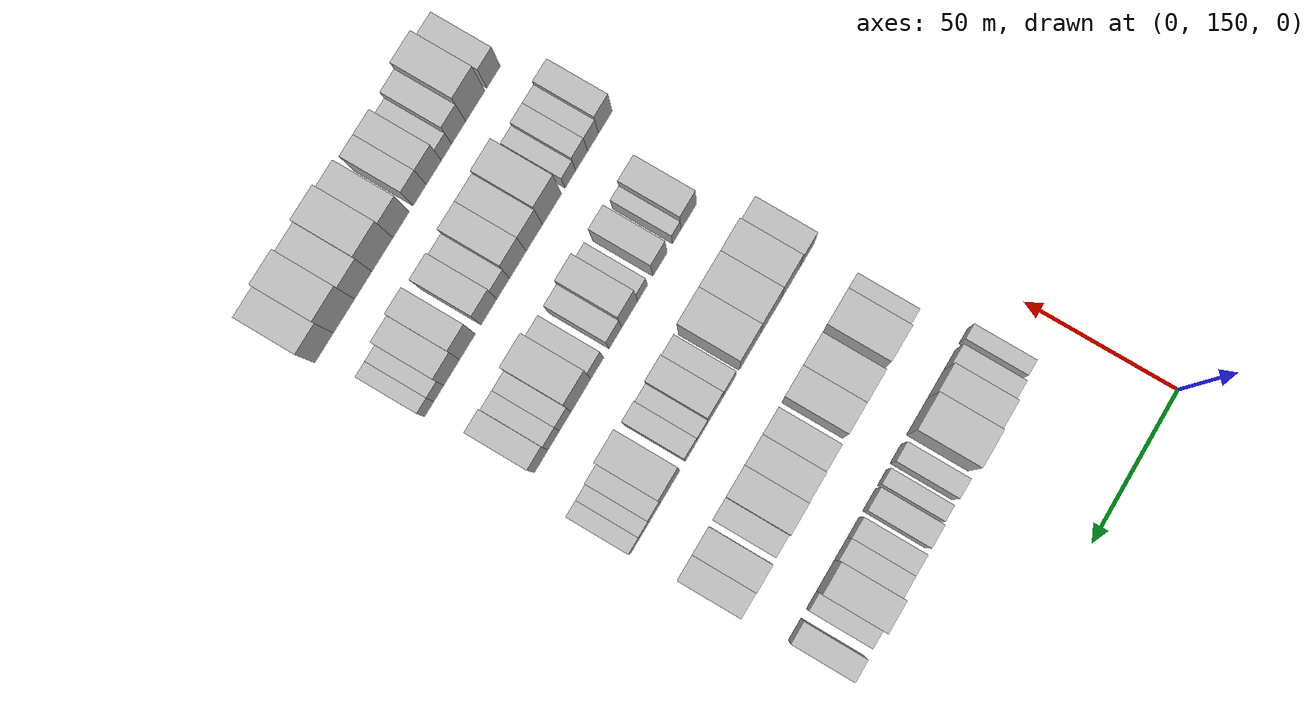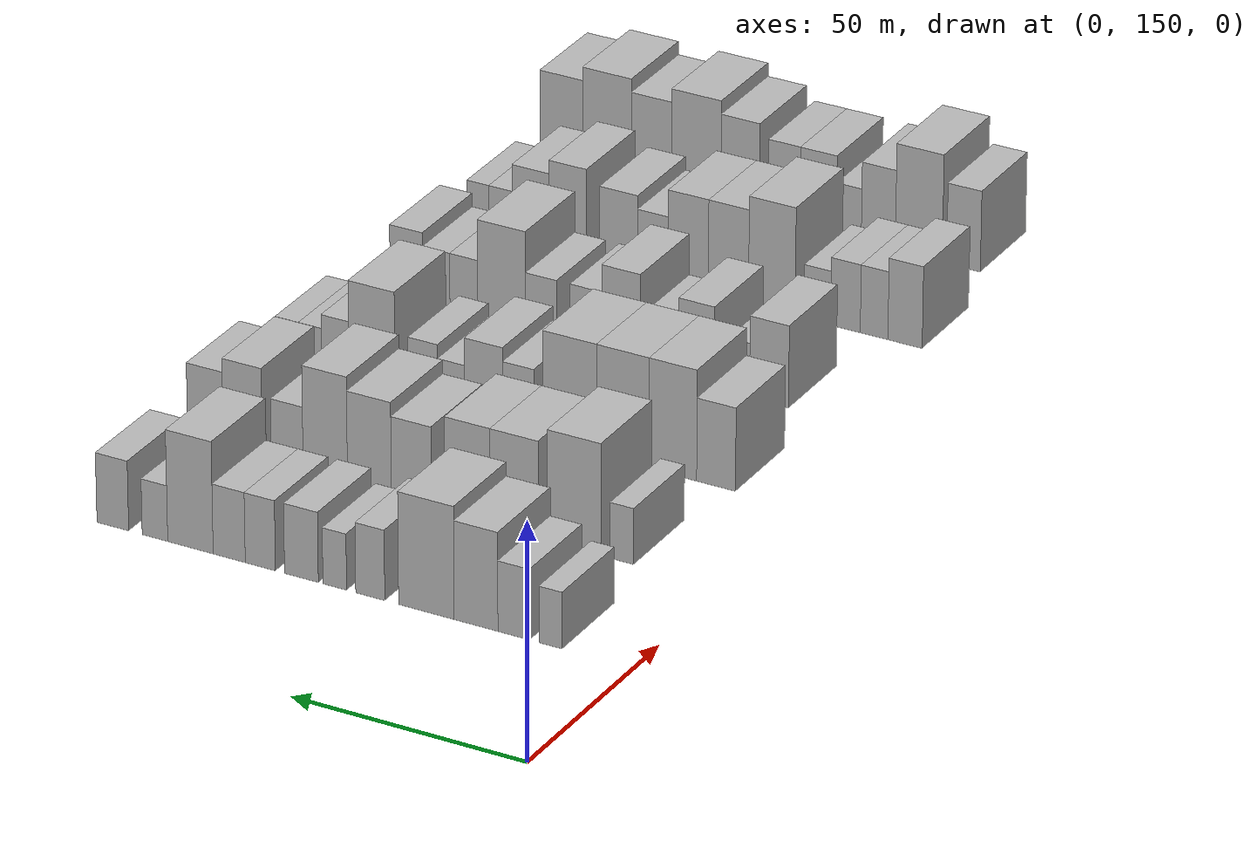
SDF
<sdf version="1.6">
 <world name="default">
  <model name="building_81">
   <static>1</static>
   <pose>50.0000 167.6186 0 0.000000 0.000000 0.000000</pose>
   <link name="link">
    <pose>0 0 6.00 0 0 0</pose>
    <collision name="collision"><geometry><box><size>20.0000 4.9465 12.0000</size></box></geometry></collision>
    <visual name="visual">
     <cast_shadows>0</cast_shadows>
     <geometry><box><size>20.0000 4.9465 12.0000</size></box></geometry>
     <material>
      <script>
       <uri>model://HANNAS_wall/materials/scripts</uri>
       <uri>model://HANNAS_wall/materials/textures</uri>
       <name>vrc/HANNAS_wall</name>
      </script>
     </material>
    </visual>
   </link>
  </model>
  <model name="building_82">
   <static>1</static>
   <pose>50.0000 175.4789 0 0.000000 0.000000 0.000000</pose>
   <link name="link">
    <pose>0 0 7.50 0 0 0</pose>
    <collision name="collision"><geometry><box><size>20.0000 6.7741 15.0000</size></box></geometry></collision>
    <visual name="visual">
     <cast_shadows>0</cast_shadows>
     <geometry><box><size>20.0000 6.7741 15.0000</size></box></geometry>
     <material>
      <script>
       <uri>model://HANNAS_wall/materials/scripts</uri>
       <uri>model://HANNAS_wall/materials/textures</uri>
       <name>vrc/HANNAS_wall</name>
      </script>
     </material>
    </visual>
   </link>
  </model>
  <model name="building_83">
   <static>1</static>
   <pose>50.0000 183.5598 0 0.000000 0.000000 0.000000</pose>
   <link name="link">
    <pose>0 0 10.50 0 0 0</pose>
    <collision name="collision"><geometry><box><size>20.0000 9.3877 21.0000</size></box></geometry></collision>
    <visual name="visual">
     <cast_shadows>0</cast_shadows>
     <geometry><box><size>20.0000 9.3877 21.0000</size></box></geometry>
     <material>
      <script>
       <uri>model://HANNAS_wall/materials/scripts</uri>
       <uri>model://HANNAS_wall/materials/textures</uri>
       <name>vrc/HANNAS_wall</name>
      </script>
     </material>
    </visual>
   </link>
  </model>
  <model name="building_84">
   <static>1</static>
   <pose>50.0000 194.2479 0 0.000000 0.000000 0.000000</pose>
   <link name="link">
    <pose>0 0 12.00 0 0 0</pose>
    <collision name="collision"><geometry><box><size>20.0000 11.9885 24.0000</size></box></geometry></collision>
    <visual name="visual">
     <cast_shadows>0</cast_shadows>
     <geometry><box><size>20.0000 11.9885 24.0000</size></box></geometry>
     <material>
      <script>
       <uri>model://HANNAS_wall/materials/scripts</uri>
       <uri>model://HANNAS_wall/materials/textures</uri>
       <name>vrc/HANNAS_wall</name>
      </script>
     </material>
    </visual>
   </link>
  </model>
  <model name="building_85">
   <static>1</static>
   <pose>50.0000 206.3884 0 0.000000 0.000000 0.000000</pose>
   <link name="link">
    <pose>0 0 7.50 0 0 0</pose>
    <collision name="collision"><geometry><box><size>20.0000 6.2926 15.0000</size></box></geometry></collision>
    <visual name="visual">
     <cast_shadows>0</cast_shadows>
     <geometry><box><size>20.0000 6.2926 15.0000</size></box></geometry>
     <material>
      <script>
       <uri>model://HANNAS_wall/materials/scripts</uri>
       <uri>model://HANNAS_wall/materials/textures</uri>
       <name>vrc/HANNAS_wall</name>
      </script>
     </material>
    </visual>
   </link>
  </model>
  <model name="building_86">
   <static>1</static>
   <pose>50.0000 214.1060 0 0.000000 0.000000 0.000000</pose>
   <link name="link">
    <pose>0 0 6.00 0 0 0</pose>
    <collision name="collision"><geometry><box><size>20.0000 5.1425 12.0000</size></box></geometry></collision>
    <visual name="visual">
     <cast_shadows>0</cast_shadows>
     <geometry><box><size>20.0000 5.1425 12.0000</size></box></geometry>
     <material>
      <script>
       <uri>model://HANNAS_wall/materials/scripts</uri>
       <uri>model://HANNAS_wall/materials/textures</uri>
       <name>vrc/HANNAS_wall</name>
      </script>
     </material>
    </visual>
   </link>
  </model>
  <model name="building_87">
   <static>1</static>
   <pose>50.0000 221.3671 0 0.000000 0.000000 0.000000</pose>
   <link name="link">
    <pose>0 0 7.50 0 0 0</pose>
    <collision name="collision"><geometry><box><size>20.0000 7.3797 15.0000</size></box></geometry></collision>
    <visual name="visual">
     <cast_shadows>0</cast_shadows>
     <geometry><box><size>20.0000 7.3797 15.0000</size></box></geometry>
     <material>
      <script>
       <uri>model://HANNAS_wall/materials/scripts</uri>
       <uri>model://HANNAS_wall/materials/textures</uri>
       <name>vrc/HANNAS_wall</name>
      </script>
     </material>
    </visual>
   </link>
  </model>
  <model name="building_88">
   <static>1</static>
   <pose>50.0000 230.3691 0 0.000000 0.000000 0.000000</pose>
   <link name="link">
    <pose>0 0 7.50 0 0 0</pose>
    <collision name="collision"><geometry><box><size>20.0000 6.6243 15.0000</size></box></geometry></collision>
    <visual name="visual">
     <cast_shadows>0</cast_shadows>
     <geometry><box><size>20.0000 6.6243 15.0000</size></box></geometry>
     <material>
      <script>
       <uri>model://HANNAS_wall/materials/scripts</uri>
       <uri>model://HANNAS_wall/materials/textures</uri>
       <name>vrc/HANNAS_wall</name>
      </script>
     </material>
    </visual>
   </link>
  </model>
  <model name="building_89">
   <static>1</static>
   <pose>50.0000 237.2116 0 0.000000 0.000000 0.000000</pose>
   <link name="link">
    <pose>0 0 7.50 0 0 0</pose>
    <collision name="collision"><geometry><box><size>20.0000 7.0607 15.0000</size></box></geometry></collision>
    <visual name="visual">
     <cast_shadows>0</cast_shadows>
     <geometry><box><size>20.0000 7.0607 15.0000</size></box></geometry>
     <material>
      <script>
       <uri>model://HANNAS_wall/materials/scripts</uri>
       <uri>model://HANNAS_wall/materials/textures</uri>
       <name>vrc/HANNAS_wall</name>
      </script>
     </material>
    </visual>
   </link>
  </model>
  <model name="building_90">
   <static>1</static>
   <pose>50.0000 245.7631 0 0.000000 0.000000 0.000000</pose>
   <link name="link">
    <pose>0 0 12.00 0 0 0</pose>
    <collision name="collision"><geometry><box><size>20.0000 10.0423 24.0000</size></box></geometry></collision>
    <visual name="visual">
     <cast_shadows>0</cast_shadows>
     <geometry><box><size>20.0000 10.0423 24.0000</size></box></geometry>
     <material>
      <script>
       <uri>model://HANNAS_wall/materials/scripts</uri>
       <uri>model://HANNAS_wall/materials/textures</uri>
       <name>vrc/HANNAS_wall</name>
      </script>
     </material>
    </visual>
   </link>
  </model>
  <model name="building_91">
   <static>1</static>
   <pose>50.0000 253.6132 0 0.000000 0.000000 0.000000</pose>
   <link name="link">
    <pose>0 0 6.00 0 0 0</pose>
    <collision name="collision"><geometry><box><size>20.0000 5.6579 12.0000</size></box></geometry></collision>
    <visual name="visual">
     <cast_shadows>0</cast_shadows>
     <geometry><box><size>20.0000 5.6579 12.0000</size></box></geometry>
     <material>
      <script>
       <uri>model://HANNAS_wall/materials/scripts</uri>
       <uri>model://HANNAS_wall/materials/textures</uri>
       <name>vrc/HANNAS_wall</name>
      </script>
     </material>
    </visual>
   </link>
  </model>
  <model name="building_92">
   <static>1</static>
   <pose>50.0000 262.9701 0 0.000000 0.000000 0.000000</pose>
   <link name="link">
    <pose>0 0 7.50 0 0 0</pose>
    <collision name="collision"><geometry><box><size>20.0000 7.0559 15.0000</size></box></geometry></collision>
    <visual name="visual">
     <cast_shadows>0</cast_shadows>
     <geometry><box><size>20.0000 7.0559 15.0000</size></box></geometry>
     <material>
      <script>
       <uri>model://HANNAS_wall/materials/scripts</uri>
       <uri>model://HANNAS_wall/materials/textures</uri>
       <name>vrc/HANNAS_wall</name>
      </script>
     </material>
    </visual>
   </link>
  </model>
  <model name="building_208">
   <static>1</static>
   <pose>85.0000 171.7800 0 0.000000 0.000000 0.000000</pose>
   <link name="link">
    <pose>0 0 6.00 0 0 0</pose>
    <collision name="collision"><geometry><box><size>20.0000 5.0857 12.0000</size></box></geometry></collision>
    <visual name="visual">
     <cast_shadows>0</cast_shadows>
     <geometry><box><size>20.0000 5.0857 12.0000</size></box></geometry>
     <material>
      <script>
       <uri>model://HANNAS_wall/materials/scripts</uri>
       <uri>model://HANNAS_wall/materials/textures</uri>
       <name>vrc/HANNAS_wall</name>
      </script>
     </material>
    </visual>
   </link>
  </model>
  <model name="building_209">
   <static>1</static>
   <pose>85.0000 182.1020 0 0.000000 0.000000 0.000000</pose>
   <link name="link">
    <pose>0 0 12.00 0 0 0</pose>
    <collision name="collision"><geometry><box><size>20.0000 11.5583 24.0000</size></box></geometry></collision>
    <visual name="visual">
     <cast_shadows>0</cast_shadows>
     <geometry><box><size>20.0000 11.5583 24.0000</size></box></geometry>
     <material>
      <script>
       <uri>model://HANNAS_wall/materials/scripts</uri>
       <uri>model://HANNAS_wall/materials/textures</uri>
       <name>vrc/HANNAS_wall</name>
      </script>
     </material>
    </visual>
   </link>
  </model>
  <model name="building_210">
   <static>1</static>
   <pose>85.0000 195.1112 0 0.000000 0.000000 0.000000</pose>
   <link name="link">
    <pose>0 0 10.50 0 0 0</pose>
    <collision name="collision"><geometry><box><size>20.0000 10.4601 21.0000</size></box></geometry></collision>
    <visual name="visual">
     <cast_shadows>0</cast_shadows>
     <geometry><box><size>20.0000 10.4601 21.0000</size></box></geometry>
     <material>
      <script>
       <uri>model://HANNAS_wall/materials/scripts</uri>
       <uri>model://HANNAS_wall/materials/textures</uri>
       <name>vrc/HANNAS_wall</name>
      </script>
     </material>
    </visual>
   </link>
  </model>
  <model name="building_211">
   <static>1</static>
   <pose>85.0000 205.2937 0 0.000000 0.000000 0.000000</pose>
   <link name="link">
    <pose>0 0 10.50 0 0 0</pose>
    <collision name="collision"><geometry><box><size>20.0000 9.9050 21.0000</size></box></geometry></collision>
    <visual name="visual">
     <cast_shadows>0</cast_shadows>
     <geometry><box><size>20.0000 9.9050 21.0000</size></box></geometry>
     <material>
      <script>
       <uri>model://HANNAS_wall/materials/scripts</uri>
       <uri>model://HANNAS_wall/materials/textures</uri>
       <name>vrc/HANNAS_wall</name>
      </script>
     </material>
    </visual>
   </link>
  </model>
  <model name="building_212">
   <static>1</static>
   <pose>85.0000 217.6470 0 0.000000 0.000000 0.000000</pose>
   <link name="link">
    <pose>0 0 9.00 0 0 0</pose>
    <collision name="collision"><geometry><box><size>20.0000 8.8016 18.0000</size></box></geometry></collision>
    <visual name="visual">
     <cast_shadows>0</cast_shadows>
     <geometry><box><size>20.0000 8.8016 18.0000</size></box></geometry>
     <material>
      <script>
       <uri>model://HANNAS_wall/materials/scripts</uri>
       <uri>model://HANNAS_wall/materials/textures</uri>
       <name>vrc/HANNAS_wall</name>
      </script>
     </material>
    </visual>
   </link>
  </model>
  <model name="building_213">
   <static>1</static>
   <pose>85.0000 226.8975 0 0.000000 0.000000 0.000000</pose>
   <link name="link">
    <pose>0 0 10.50 0 0 0</pose>
    <collision name="collision"><geometry><box><size>20.0000 9.6993 21.0000</size></box></geometry></collision>
    <visual name="visual">
     <cast_shadows>0</cast_shadows>
     <geometry><box><size>20.0000 9.6993 21.0000</size></box></geometry>
     <material>
      <script>
       <uri>model://HANNAS_wall/materials/scripts</uri>
       <uri>model://HANNAS_wall/materials/textures</uri>
       <name>vrc/HANNAS_wall</name>
      </script>
     </material>
    </visual>
   </link>
  </model>
  <model name="building_214">
   <static>1</static>
   <pose>85.0000 236.6710 0 0.000000 0.000000 0.000000</pose>
   <link name="link">
    <pose>0 0 12.00 0 0 0</pose>
    <collision name="collision"><geometry><box><size>20.0000 9.8477 24.0000</size></box></geometry></collision>
    <visual name="visual">
     <cast_shadows>0</cast_shadows>
     <geometry><box><size>20.0000 9.8477 24.0000</size></box></geometry>
     <material>
      <script>
       <uri>model://HANNAS_wall/materials/scripts</uri>
       <uri>model://HANNAS_wall/materials/textures</uri>
       <name>vrc/HANNAS_wall</name>
      </script>
     </material>
    </visual>
   </link>
  </model>
  <model name="building_215">
   <static>1</static>
   <pose>85.0000 245.1338 0 0.000000 0.000000 0.000000</pose>
   <link name="link">
    <pose>0 0 7.50 0 0 0</pose>
    <collision name="collision"><geometry><box><size>20.0000 7.0779 15.0000</size></box></geometry></collision>
    <visual name="visual">
     <cast_shadows>0</cast_shadows>
     <geometry><box><size>20.0000 7.0779 15.0000</size></box></geometry>
     <material>
      <script>
       <uri>model://HANNAS_wall/materials/scripts</uri>
       <uri>model://HANNAS_wall/materials/textures</uri>
       <name>vrc/HANNAS_wall</name>
      </script>
     </material>
    </visual>
   </link>
  </model>
  <model name="building_216">
   <static>1</static>
   <pose>85.0000 255.0376 0 0.000000 0.000000 0.000000</pose>
   <link name="link">
    <pose>0 0 10.50 0 0 0</pose>
    <collision name="collision"><geometry><box><size>20.0000 8.7296 21.0000</size></box></geometry></collision>
    <visual name="visual">
     <cast_shadows>0</cast_shadows>
     <geometry><box><size>20.0000 8.7296 21.0000</size></box></geometry>
     <material>
      <script>
       <uri>model://HANNAS_wall/materials/scripts</uri>
       <uri>model://HANNAS_wall/materials/textures</uri>
       <name>vrc/HANNAS_wall</name>
      </script>
     </material>
    </visual>
   </link>
  </model>
  <model name="building_217">
   <static>1</static>
   <pose>85.0000 263.4121 0 0.000000 0.000000 0.000000</pose>
   <link name="link">
    <pose>0 0 9.00 0 0 0</pose>
    <collision name="collision"><geometry><box><size>20.0000 8.0194 18.0000</size></box></geometry></collision>
    <visual name="visual">
     <cast_shadows>0</cast_shadows>
     <geometry><box><size>20.0000 8.0194 18.0000</size></box></geometry>
     <material>
      <script>
       <uri>model://HANNAS_wall/materials/scripts</uri>
       <uri>model://HANNAS_wall/materials/textures</uri>
       <name>vrc/HANNAS_wall</name>
      </script>
     </material>
    </visual>
   </link>
  </model>
  <model name="building_337">
   <static>1</static>
   <pose>120.0000 170.4683 0 0.000000 0.000000 0.000000</pose>
   <link name="link">
    <pose>0 0 9.00 0 0 0</pose>
    <collision name="collision"><geometry><box><size>20.0000 8.4578 18.0000</size></box></geometry></collision>
    <visual name="visual">
     <cast_shadows>0</cast_shadows>
     <geometry><box><size>20.0000 8.4578 18.0000</size></box></geometry>
     <material>
      <script>
       <uri>model://HANNAS_wall/materials/scripts</uri>
       <uri>model://HANNAS_wall/materials/textures</uri>
       <name>vrc/HANNAS_wall</name>
      </script>
     </material>
    </visual>
   </link>
  </model>
  <model name="building_338">
   <static>1</static>
   <pose>120.0000 179.9146 0 0.000000 0.000000 0.000000</pose>
   <link name="link">
    <pose>0 0 12.00 0 0 0</pose>
    <collision name="collision"><geometry><box><size>20.0000 10.4348 24.0000</size></box></geometry></collision>
    <visual name="visual">
     <cast_shadows>0</cast_shadows>
     <geometry><box><size>20.0000 10.4348 24.0000</size></box></geometry>
     <material>
      <script>
       <uri>model://HANNAS_wall/materials/scripts</uri>
       <uri>model://HANNAS_wall/materials/textures</uri>
       <name>vrc/HANNAS_wall</name>
      </script>
     </material>
    </visual>
   </link>
  </model>
  <model name="building_339">
   <static>1</static>
   <pose>120.0000 190.9061 0 0.000000 0.000000 0.000000</pose>
   <link name="link">
    <pose>0 0 12.00 0 0 0</pose>
    <collision name="collision"><geometry><box><size>20.0000 11.5480 24.0000</size></box></geometry></collision>
    <visual name="visual">
     <cast_shadows>0</cast_shadows>
     <geometry><box><size>20.0000 11.5480 24.0000</size></box></geometry>
     <material>
      <script>
       <uri>model://HANNAS_wall/materials/scripts</uri>
       <uri>model://HANNAS_wall/materials/textures</uri>
       <name>vrc/HANNAS_wall</name>
      </script>
     </material>
    </visual>
   </link>
  </model>
  <model name="building_340">
   <static>1</static>
   <pose>120.0000 202.5790 0 0.000000 0.000000 0.000000</pose>
   <link name="link">
    <pose>0 0 12.00 0 0 0</pose>
    <collision name="collision"><geometry><box><size>20.0000 11.7979 24.0000</size></box></geometry></collision>
    <visual name="visual">
     <cast_shadows>0</cast_shadows>
     <geometry><box><size>20.0000 11.7979 24.0000</size></box></geometry>
     <material>
      <script>
       <uri>model://HANNAS_wall/materials/scripts</uri>
       <uri>model://HANNAS_wall/materials/textures</uri>
       <name>vrc/HANNAS_wall</name>
      </script>
     </material>
    </visual>
   </link>
  </model>
  <model name="building_341">
   <static>1</static>
   <pose>120.0000 213.9292 0 0.000000 0.000000 0.000000</pose>
   <link name="link">
    <pose>0 0 7.50 0 0 0</pose>
    <collision name="collision"><geometry><box><size>20.0000 6.9023 15.0000</size></box></geometry></collision>
    <visual name="visual">
     <cast_shadows>0</cast_shadows>
     <geometry><box><size>20.0000 6.9023 15.0000</size></box></geometry>
     <material>
      <script>
       <uri>model://HANNAS_wall/materials/scripts</uri>
       <uri>model://HANNAS_wall/materials/textures</uri>
       <name>vrc/HANNAS_wall</name>
      </script>
     </material>
    </visual>
   </link>
  </model>
  <model name="building_342">
   <static>1</static>
   <pose>120.0000 221.6189 0 0.000000 0.000000 0.000000</pose>
   <link name="link">
    <pose>0 0 9.00 0 0 0</pose>
    <collision name="collision"><geometry><box><size>20.0000 8.4772 18.0000</size></box></geometry></collision>
    <visual name="visual">
     <cast_shadows>0</cast_shadows>
     <geometry><box><size>20.0000 8.4772 18.0000</size></box></geometry>
     <material>
      <script>
       <uri>model://HANNAS_wall/materials/scripts</uri>
       <uri>model://HANNAS_wall/materials/textures</uri>
       <name>vrc/HANNAS_wall</name>
      </script>
     </material>
    </visual>
   </link>
  </model>
  <model name="building_343">
   <static>1</static>
   <pose>120.0000 228.8431 0 0.000000 0.000000 0.000000</pose>
   <link name="link">
    <pose>0 0 6.00 0 0 0</pose>
    <collision name="collision"><geometry><box><size>20.0000 5.9711 12.0000</size></box></geometry></collision>
    <visual name="visual">
     <cast_shadows>0</cast_shadows>
     <geometry><box><size>20.0000 5.9711 12.0000</size></box></geometry>
     <material>
      <script>
       <uri>model://HANNAS_wall/materials/scripts</uri>
       <uri>model://HANNAS_wall/materials/textures</uri>
       <name>vrc/HANNAS_wall</name>
      </script>
     </material>
    </visual>
   </link>
  </model>
  <model name="building_344">
   <static>1</static>
   <pose>120.0000 235.1442 0 0.000000 0.000000 0.000000</pose>
   <link name="link">
    <pose>0 0 7.50 0 0 0</pose>
    <collision name="collision"><geometry><box><size>20.0000 6.6312 15.0000</size></box></geometry></collision>
    <visual name="visual">
     <cast_shadows>0</cast_shadows>
     <geometry><box><size>20.0000 6.6312 15.0000</size></box></geometry>
     <material>
      <script>
       <uri>model://HANNAS_wall/materials/scripts</uri>
       <uri>model://HANNAS_wall/materials/textures</uri>
       <name>vrc/HANNAS_wall</name>
      </script>
     </material>
    </visual>
   </link>
  </model>
  <model name="building_345">
   <static>1</static>
   <pose>120.0000 246.6301 0 0.000000 0.000000 0.000000</pose>
   <link name="link">
    <pose>0 0 12.00 0 0 0</pose>
    <collision name="collision"><geometry><box><size>20.0000 10.3406 24.0000</size></box></geometry></collision>
    <visual name="visual">
     <cast_shadows>0</cast_shadows>
     <geometry><box><size>20.0000 10.3406 24.0000</size></box></geometry>
     <material>
      <script>
       <uri>model://HANNAS_wall/materials/scripts</uri>
       <uri>model://HANNAS_wall/materials/textures</uri>
       <name>vrc/HANNAS_wall</name>
      </script>
     </material>
    </visual>
   </link>
  </model>
  <model name="building_346">
   <static>1</static>
   <pose>120.0000 254.9028 0 0.000000 0.000000 0.000000</pose>
   <link name="link">
    <pose>0 0 7.50 0 0 0</pose>
    <collision name="collision"><geometry><box><size>20.0000 6.2047 15.0000</size></box></geometry></collision>
    <visual name="visual">
     <cast_shadows>0</cast_shadows>
     <geometry><box><size>20.0000 6.2047 15.0000</size></box></geometry>
     <material>
      <script>
       <uri>model://HANNAS_wall/materials/scripts</uri>
       <uri>model://HANNAS_wall/materials/textures</uri>
       <name>vrc/HANNAS_wall</name>
      </script>
     </material>
    </visual>
   </link>
  </model>
  <model name="building_347">
   <static>1</static>
   <pose>120.0000 260.5776 0 0.000000 0.000000 0.000000</pose>
   <link name="link">
    <pose>0 0 6.00 0 0 0</pose>
    <collision name="collision"><geometry><box><size>20.0000 5.1450 12.0000</size></box></geometry></collision>
    <visual name="visual">
     <cast_shadows>0</cast_shadows>
     <geometry><box><size>20.0000 5.1450 12.0000</size></box></geometry>
     <material>
      <script>
       <uri>model://HANNAS_wall/materials/scripts</uri>
       <uri>model://HANNAS_wall/materials/textures</uri>
       <name>vrc/HANNAS_wall</name>
      </script>
     </material>
    </visual>
   </link>
  </model>
  <model name="building_348">
   <static>1</static>
   <pose>120.0000 265.7799 0 0.000000 0.000000 0.000000</pose>
   <link name="link">
    <pose>0 0 6.00 0 0 0</pose>
    <collision name="collision"><geometry><box><size>20.0000 5.2596 12.0000</size></box></geometry></collision>
    <visual name="visual">
     <cast_shadows>0</cast_shadows>
     <geometry><box><size>20.0000 5.2596 12.0000</size></box></geometry>
     <material>
      <script>
       <uri>model://HANNAS_wall/materials/scripts</uri>
       <uri>model://HANNAS_wall/materials/textures</uri>
       <name>vrc/HANNAS_wall</name>
      </script>
     </material>
    </visual>
   </link>
  </model>
  <model name="building_464">
   <static>1</static>
   <pose>155.0000 177.6605 0 0.000000 0.000000 0.000000</pose>
   <link name="link">
    <pose>0 0 9.00 0 0 0</pose>
    <collision name="collision"><geometry><box><size>20.0000 8.6033 18.0000</size></box></geometry></collision>
    <visual name="visual">
     <cast_shadows>0</cast_shadows>
     <geometry><box><size>20.0000 8.6033 18.0000</size></box></geometry>
     <material>
      <script>
       <uri>model://HANNAS_wall/materials/scripts</uri>
       <uri>model://HANNAS_wall/materials/textures</uri>
       <name>vrc/HANNAS_wall</name>
      </script>
     </material>
    </visual>
   </link>
  </model>
  <model name="building_465">
   <static>1</static>
   <pose>155.0000 184.3651 0 0.000000 0.000000 0.000000</pose>
   <link name="link">
    <pose>0 0 6.00 0 0 0</pose>
    <collision name="collision"><geometry><box><size>20.0000 4.8060 12.0000</size></box></geometry></collision>
    <visual name="visual">
     <cast_shadows>0</cast_shadows>
     <geometry><box><size>20.0000 4.8060 12.0000</size></box></geometry>
     <material>
      <script>
       <uri>model://HANNAS_wall/materials/scripts</uri>
       <uri>model://HANNAS_wall/materials/textures</uri>
       <name>vrc/HANNAS_wall</name>
      </script>
     </material>
    </visual>
   </link>
  </model>
  <model name="building_466">
   <static>1</static>
   <pose>155.0000 193.7380 0 0.000000 0.000000 0.000000</pose>
   <link name="link">
    <pose>0 0 9.00 0 0 0</pose>
    <collision name="collision"><geometry><box><size>20.0000 7.9397 18.0000</size></box></geometry></collision>
    <visual name="visual">
     <cast_shadows>0</cast_shadows>
     <geometry><box><size>20.0000 7.9397 18.0000</size></box></geometry>
     <material>
      <script>
       <uri>model://HANNAS_wall/materials/scripts</uri>
       <uri>model://HANNAS_wall/materials/textures</uri>
       <name>vrc/HANNAS_wall</name>
      </script>
     </material>
    </visual>
   </link>
  </model>
  <model name="building_467">
   <static>1</static>
   <pose>155.0000 203.4567 0 0.000000 0.000000 0.000000</pose>
   <link name="link">
    <pose>0 0 6.00 0 0 0</pose>
    <collision name="collision"><geometry><box><size>20.0000 5.4976 12.0000</size></box></geometry></collision>
    <visual name="visual">
     <cast_shadows>0</cast_shadows>
     <geometry><box><size>20.0000 5.4976 12.0000</size></box></geometry>
     <material>
      <script>
       <uri>model://HANNAS_wall/materials/scripts</uri>
       <uri>model://HANNAS_wall/materials/textures</uri>
       <name>vrc/HANNAS_wall</name>
      </script>
     </material>
    </visual>
   </link>
  </model>
  <model name="building_468">
   <static>1</static>
   <pose>155.0000 210.5504 0 0.000000 0.000000 0.000000</pose>
   <link name="link">
    <pose>0 0 10.50 0 0 0</pose>
    <collision name="collision"><geometry><box><size>20.0000 8.6898 21.0000</size></box></geometry></collision>
    <visual name="visual">
     <cast_shadows>0</cast_shadows>
     <geometry><box><size>20.0000 8.6898 21.0000</size></box></geometry>
     <material>
      <script>
       <uri>model://HANNAS_wall/materials/scripts</uri>
       <uri>model://HANNAS_wall/materials/textures</uri>
       <name>vrc/HANNAS_wall</name>
      </script>
     </material>
    </visual>
   </link>
  </model>
  <model name="building_469">
   <static>1</static>
   <pose>155.0000 218.4419 0 0.000000 0.000000 0.000000</pose>
   <link name="link">
    <pose>0 0 7.50 0 0 0</pose>
    <collision name="collision"><geometry><box><size>20.0000 7.0932 15.0000</size></box></geometry></collision>
    <visual name="visual">
     <cast_shadows>0</cast_shadows>
     <geometry><box><size>20.0000 7.0932 15.0000</size></box></geometry>
     <material>
      <script>
       <uri>model://HANNAS_wall/materials/scripts</uri>
       <uri>model://HANNAS_wall/materials/textures</uri>
       <name>vrc/HANNAS_wall</name>
      </script>
     </material>
    </visual>
   </link>
  </model>
  <model name="building_470">
   <static>1</static>
   <pose>155.0000 228.4949 0 0.000000 0.000000 0.000000</pose>
   <link name="link">
    <pose>0 0 7.50 0 0 0</pose>
    <collision name="collision"><geometry><box><size>20.0000 7.0127 15.0000</size></box></geometry></collision>
    <visual name="visual">
     <cast_shadows>0</cast_shadows>
     <geometry><box><size>20.0000 7.0127 15.0000</size></box></geometry>
     <material>
      <script>
       <uri>model://HANNAS_wall/materials/scripts</uri>
       <uri>model://HANNAS_wall/materials/textures</uri>
       <name>vrc/HANNAS_wall</name>
      </script>
     </material>
    </visual>
   </link>
  </model>
  <model name="building_471">
   <static>1</static>
   <pose>155.0000 237.4145 0 0.000000 0.000000 0.000000</pose>
   <link name="link">
    <pose>0 0 12.00 0 0 0</pose>
    <collision name="collision"><geometry><box><size>20.0000 10.8266 24.0000</size></box></geometry></collision>
    <visual name="visual">
     <cast_shadows>0</cast_shadows>
     <geometry><box><size>20.0000 10.8266 24.0000</size></box></geometry>
     <material>
      <script>
       <uri>model://HANNAS_wall/materials/scripts</uri>
       <uri>model://HANNAS_wall/materials/textures</uri>
       <name>vrc/HANNAS_wall</name>
      </script>
     </material>
    </visual>
   </link>
  </model>
  <model name="building_472">
   <static>1</static>
   <pose>155.0000 245.9853 0 0.000000 0.000000 0.000000</pose>
   <link name="link">
    <pose>0 0 7.50 0 0 0</pose>
    <collision name="collision"><geometry><box><size>20.0000 6.3149 15.0000</size></box></geometry></collision>
    <visual name="visual">
     <cast_shadows>0</cast_shadows>
     <geometry><box><size>20.0000 6.3149 15.0000</size></box></geometry>
     <material>
      <script>
       <uri>model://HANNAS_wall/materials/scripts</uri>
       <uri>model://HANNAS_wall/materials/textures</uri>
       <name>vrc/HANNAS_wall</name>
      </script>
     </material>
    </visual>
   </link>
  </model>
  <model name="building_473">
   <static>1</static>
   <pose>155.0000 252.2484 0 0.000000 0.000000 0.000000</pose>
   <link name="link">
    <pose>0 0 7.50 0 0 0</pose>
    <collision name="collision"><geometry><box><size>20.0000 6.2112 15.0000</size></box></geometry></collision>
    <visual name="visual">
     <cast_shadows>0</cast_shadows>
     <geometry><box><size>20.0000 6.2112 15.0000</size></box></geometry>
     <material>
      <script>
       <uri>model://HANNAS_wall/materials/scripts</uri>
       <uri>model://HANNAS_wall/materials/textures</uri>
       <name>vrc/HANNAS_wall</name>
      </script>
     </material>
    </visual>
   </link>
  </model>
  <model name="building_474">
   <static>1</static>
   <pose>155.0000 259.0670 0 0.000000 0.000000 0.000000</pose>
   <link name="link">
    <pose>0 0 9.00 0 0 0</pose>
    <collision name="collision"><geometry><box><size>20.0000 7.4260 18.0000</size></box></geometry></collision>
    <visual name="visual">
     <cast_shadows>0</cast_shadows>
     <geometry><box><size>20.0000 7.4260 18.0000</size></box></geometry>
     <material>
      <script>
       <uri>model://HANNAS_wall/materials/scripts</uri>
       <uri>model://HANNAS_wall/materials/textures</uri>
       <name>vrc/HANNAS_wall</name>
      </script>
     </material>
    </visual>
   </link>
  </model>
  <model name="building_589">
   <static>1</static>
   <pose>190.0000 165.9881 0 0.000000 0.000000 0.000000</pose>
   <link name="link">
    <pose>0 0 9.00 0 0 0</pose>
    <collision name="collision"><geometry><box><size>20.0000 7.6053 18.0000</size></box></geometry></collision>
    <visual name="visual">
     <cast_shadows>0</cast_shadows>
     <geometry><box><size>20.0000 7.6053 18.0000</size></box></geometry>
     <material>
      <script>
       <uri>model://HANNAS_wall/materials/scripts</uri>
       <uri>model://HANNAS_wall/materials/textures</uri>
       <name>vrc/HANNAS_wall</name>
      </script>
     </material>
    </visual>
   </link>
  </model>
  <model name="building_590">
   <static>1</static>
   <pose>190.0000 172.8587 0 0.000000 0.000000 0.000000</pose>
   <link name="link">
    <pose>0 0 7.50 0 0 0</pose>
    <collision name="collision"><geometry><box><size>20.0000 6.1359 15.0000</size></box></geometry></collision>
    <visual name="visual">
     <cast_shadows>0</cast_shadows>
     <geometry><box><size>20.0000 6.1359 15.0000</size></box></geometry>
     <material>
      <script>
       <uri>model://HANNAS_wall/materials/scripts</uri>
       <uri>model://HANNAS_wall/materials/textures</uri>
       <name>vrc/HANNAS_wall</name>
      </script>
     </material>
    </visual>
   </link>
  </model>
  <model name="building_591">
   <static>1</static>
   <pose>190.0000 179.2404 0 0.000000 0.000000 0.000000</pose>
   <link name="link">
    <pose>0 0 7.50 0 0 0</pose>
    <collision name="collision"><geometry><box><size>20.0000 6.6275 15.0000</size></box></geometry></collision>
    <visual name="visual">
     <cast_shadows>0</cast_shadows>
     <geometry><box><size>20.0000 6.6275 15.0000</size></box></geometry>
     <material>
      <script>
       <uri>model://HANNAS_wall/materials/scripts</uri>
       <uri>model://HANNAS_wall/materials/textures</uri>
       <name>vrc/HANNAS_wall</name>
      </script>
     </material>
    </visual>
   </link>
  </model>
  <model name="building_592">
   <static>1</static>
   <pose>190.0000 185.5254 0 0.000000 0.000000 0.000000</pose>
   <link name="link">
    <pose>0 0 6.00 0 0 0</pose>
    <collision name="collision"><geometry><box><size>20.0000 5.9426 12.0000</size></box></geometry></collision>
    <visual name="visual">
     <cast_shadows>0</cast_shadows>
     <geometry><box><size>20.0000 5.9426 12.0000</size></box></geometry>
     <material>
      <script>
       <uri>model://HANNAS_wall/materials/scripts</uri>
       <uri>model://HANNAS_wall/materials/textures</uri>
       <name>vrc/HANNAS_wall</name>
      </script>
     </material>
    </visual>
   </link>
  </model>
  <model name="building_593">
   <static>1</static>
   <pose>190.0000 195.7266 0 0.000000 0.000000 0.000000</pose>
   <link name="link">
    <pose>0 0 12.00 0 0 0</pose>
    <collision name="collision"><geometry><box><size>20.0000 10.4598 24.0000</size></box></geometry></collision>
    <visual name="visual">
     <cast_shadows>0</cast_shadows>
     <geometry><box><size>20.0000 10.4598 24.0000</size></box></geometry>
     <material>
      <script>
       <uri>model://HANNAS_wall/materials/scripts</uri>
       <uri>model://HANNAS_wall/materials/textures</uri>
       <name>vrc/HANNAS_wall</name>
      </script>
     </material>
    </visual>
   </link>
  </model>
  <model name="building_594">
   <static>1</static>
   <pose>190.0000 205.4909 0 0.000000 0.000000 0.000000</pose>
   <link name="link">
    <pose>0 0 10.50 0 0 0</pose>
    <collision name="collision"><geometry><box><size>20.0000 9.0687 21.0000</size></box></geometry></collision>
    <visual name="visual">
     <cast_shadows>0</cast_shadows>
     <geometry><box><size>20.0000 9.0687 21.0000</size></box></geometry>
     <material>
      <script>
       <uri>model://HANNAS_wall/materials/scripts</uri>
       <uri>model://HANNAS_wall/materials/textures</uri>
       <name>vrc/HANNAS_wall</name>
      </script>
     </material>
    </visual>
   </link>
  </model>
  <model name="building_595">
   <static>1</static>
   <pose>190.0000 214.5672 0 0.000000 0.000000 0.000000</pose>
   <link name="link">
    <pose>0 0 10.50 0 0 0</pose>
    <collision name="collision"><geometry><box><size>20.0000 9.0838 21.0000</size></box></geometry></collision>
    <visual name="visual">
     <cast_shadows>0</cast_shadows>
     <geometry><box><size>20.0000 9.0838 21.0000</size></box></geometry>
     <material>
      <script>
       <uri>model://HANNAS_wall/materials/scripts</uri>
       <uri>model://HANNAS_wall/materials/textures</uri>
       <name>vrc/HANNAS_wall</name>
      </script>
     </material>
    </visual>
   </link>
  </model>
  <model name="building_596">
   <static>1</static>
   <pose>190.0000 222.5846 0 0.000000 0.000000 0.000000</pose>
   <link name="link">
    <pose>0 0 7.50 0 0 0</pose>
    <collision name="collision"><geometry><box><size>20.0000 6.9511 15.0000</size></box></geometry></collision>
    <visual name="visual">
     <cast_shadows>0</cast_shadows>
     <geometry><box><size>20.0000 6.9511 15.0000</size></box></geometry>
     <material>
      <script>
       <uri>model://HANNAS_wall/materials/scripts</uri>
       <uri>model://HANNAS_wall/materials/textures</uri>
       <name>vrc/HANNAS_wall</name>
      </script>
     </material>
    </visual>
   </link>
  </model>
  <model name="building_597">
   <static>1</static>
   <pose>190.0000 230.3904 0 0.000000 0.000000 0.000000</pose>
   <link name="link">
    <pose>0 0 9.00 0 0 0</pose>
    <collision name="collision"><geometry><box><size>20.0000 8.6606 18.0000</size></box></geometry></collision>
    <visual name="visual">
     <cast_shadows>0</cast_shadows>
     <geometry><box><size>20.0000 8.6606 18.0000</size></box></geometry>
     <material>
      <script>
       <uri>model://HANNAS_wall/materials/scripts</uri>
       <uri>model://HANNAS_wall/materials/textures</uri>
       <name>vrc/HANNAS_wall</name>
      </script>
     </material>
    </visual>
   </link>
  </model>
  <model name="building_598">
   <static>1</static>
   <pose>190.0000 241.9807 0 0.000000 0.000000 0.000000</pose>
   <link name="link">
    <pose>0 0 10.50 0 0 0</pose>
    <collision name="collision"><geometry><box><size>20.0000 8.5201 21.0000</size></box></geometry></collision>
    <visual name="visual">
     <cast_shadows>0</cast_shadows>
     <geometry><box><size>20.0000 8.5201 21.0000</size></box></geometry>
     <material>
      <script>
       <uri>model://HANNAS_wall/materials/scripts</uri>
       <uri>model://HANNAS_wall/materials/textures</uri>
       <name>vrc/HANNAS_wall</name>
      </script>
     </material>
    </visual>
   </link>
  </model>
  <model name="building_599">
   <static>1</static>
   <pose>190.0000 250.5094 0 0.000000 0.000000 0.000000</pose>
   <link name="link">
    <pose>0 0 9.00 0 0 0</pose>
    <collision name="collision"><geometry><box><size>20.0000 8.5373 18.0000</size></box></geometry></collision>
    <visual name="visual">
     <cast_shadows>0</cast_shadows>
     <geometry><box><size>20.0000 8.5373 18.0000</size></box></geometry>
     <material>
      <script>
       <uri>model://HANNAS_wall/materials/scripts</uri>
       <uri>model://HANNAS_wall/materials/textures</uri>
       <name>vrc/HANNAS_wall</name>
      </script>
     </material>
    </visual>
   </link>
  </model>
  <model name="building_600">
   <static>1</static>
   <pose>190.0000 257.4487 0 0.000000 0.000000 0.000000</pose>
   <link name="link">
    <pose>0 0 6.00 0 0 0</pose>
    <collision name="collision"><geometry><box><size>20.0000 5.3412 12.0000</size></box></geometry></collision>
    <visual name="visual">
     <cast_shadows>0</cast_shadows>
     <geometry><box><size>20.0000 5.3412 12.0000</size></box></geometry>
     <material>
      <script>
       <uri>model://HANNAS_wall/materials/scripts</uri>
       <uri>model://HANNAS_wall/materials/textures</uri>
       <name>vrc/HANNAS_wall</name>
      </script>
     </material>
    </visual>
   </link>
  </model>
  <model name="building_601">
   <static>1</static>
   <pose>190.0000 262.6306 0 0.000000 0.000000 0.000000</pose>
   <link name="link">
    <pose>0 0 6.00 0 0 0</pose>
    <collision name="collision"><geometry><box><size>20.0000 5.0226 12.0000</size></box></geometry></collision>
    <visual name="visual">
     <cast_shadows>0</cast_shadows>
     <geometry><box><size>20.0000 5.0226 12.0000</size></box></geometry>
     <material>
      <script>
       <uri>model://HANNAS_wall/materials/scripts</uri>
       <uri>model://HANNAS_wall/materials/textures</uri>
       <name>vrc/HANNAS_wall</name>
      </script>
     </material>
    </visual>
   </link>
  </model>
  <model name="building_716">
   <static>1</static>
   <pose>225.0000 170.9781 0 0.000000 0.000000 0.000000</pose>
   <link name="link">
    <pose>0 0 9.00 0 0 0</pose>
    <collision name="collision"><geometry><box><size>20.0000 7.5534 18.0000</size></box></geometry></collision>
    <visual name="visual">
     <cast_shadows>0</cast_shadows>
     <geometry><box><size>20.0000 7.5534 18.0000</size></box></geometry>
     <material>
      <script>
       <uri>model://HANNAS_wall/materials/scripts</uri>
       <uri>model://HANNAS_wall/materials/textures</uri>
       <name>vrc/HANNAS_wall</name>
      </script>
     </material>
    </visual>
   </link>
  </model>
  <model name="building_717">
   <static>1</static>
   <pose>225.0000 181.0437 0 0.000000 0.000000 0.000000</pose>
   <link name="link">
    <pose>0 0 12.00 0 0 0</pose>
    <collision name="collision"><geometry><box><size>20.0000 10.5780 24.0000</size></box></geometry></collision>
    <visual name="visual">
     <cast_shadows>0</cast_shadows>
     <geometry><box><size>20.0000 10.5780 24.0000</size></box></geometry>
     <material>
      <script>
       <uri>model://HANNAS_wall/materials/scripts</uri>
       <uri>model://HANNAS_wall/materials/textures</uri>
       <name>vrc/HANNAS_wall</name>
      </script>
     </material>
    </visual>
   </link>
  </model>
  <model name="building_718">
   <static>1</static>
   <pose>225.0000 190.1797 0 0.000000 0.000000 0.000000</pose>
   <link name="link">
    <pose>0 0 9.00 0 0 0</pose>
    <collision name="collision"><geometry><box><size>20.0000 7.6939 18.0000</size></box></geometry></collision>
    <visual name="visual">
     <cast_shadows>0</cast_shadows>
     <geometry><box><size>20.0000 7.6939 18.0000</size></box></geometry>
     <material>
      <script>
       <uri>model://HANNAS_wall/materials/scripts</uri>
       <uri>model://HANNAS_wall/materials/textures</uri>
       <name>vrc/HANNAS_wall</name>
      </script>
     </material>
    </visual>
   </link>
  </model>
  <model name="building_719">
   <static>1</static>
   <pose>225.0000 196.8665 0 0.000000 0.000000 0.000000</pose>
   <link name="link">
    <pose>0 0 6.00 0 0 0</pose>
    <collision name="collision"><geometry><box><size>20.0000 5.6797 12.0000</size></box></geometry></collision>
    <visual name="visual">
     <cast_shadows>0</cast_shadows>
     <geometry><box><size>20.0000 5.6797 12.0000</size></box></geometry>
     <material>
      <script>
       <uri>model://HANNAS_wall/materials/scripts</uri>
       <uri>model://HANNAS_wall/materials/textures</uri>
       <name>vrc/HANNAS_wall</name>
      </script>
     </material>
    </visual>
   </link>
  </model>
  <model name="building_720">
   <static>1</static>
   <pose>225.0000 203.8563 0 0.000000 0.000000 0.000000</pose>
   <link name="link">
    <pose>0 0 9.00 0 0 0</pose>
    <collision name="collision"><geometry><box><size>20.0000 8.2999 18.0000</size></box></geometry></collision>
    <visual name="visual">
     <cast_shadows>0</cast_shadows>
     <geometry><box><size>20.0000 8.2999 18.0000</size></box></geometry>
     <material>
      <script>
       <uri>model://HANNAS_wall/materials/scripts</uri>
       <uri>model://HANNAS_wall/materials/textures</uri>
       <name>vrc/HANNAS_wall</name>
      </script>
     </material>
    </visual>
   </link>
  </model>
  <model name="building_721">
   <static>1</static>
   <pose>225.0000 211.6197 0 0.000000 0.000000 0.000000</pose>
   <link name="link">
    <pose>0 0 9.00 0 0 0</pose>
    <collision name="collision"><geometry><box><size>20.0000 7.2269 18.0000</size></box></geometry></collision>
    <visual name="visual">
     <cast_shadows>0</cast_shadows>
     <geometry><box><size>20.0000 7.2269 18.0000</size></box></geometry>
     <material>
      <script>
       <uri>model://HANNAS_wall/materials/scripts</uri>
       <uri>model://HANNAS_wall/materials/textures</uri>
       <name>vrc/HANNAS_wall</name>
      </script>
     </material>
    </visual>
   </link>
  </model>
  <model name="building_722">
   <static>1</static>
   <pose>225.0000 221.6631 0 0.000000 0.000000 0.000000</pose>
   <link name="link">
    <pose>0 0 10.50 0 0 0</pose>
    <collision name="collision"><geometry><box><size>20.0000 8.8599 21.0000</size></box></geometry></collision>
    <visual name="visual">
     <cast_shadows>0</cast_shadows>
     <geometry><box><size>20.0000 8.8599 21.0000</size></box></geometry>
     <material>
      <script>
       <uri>model://HANNAS_wall/materials/scripts</uri>
       <uri>model://HANNAS_wall/materials/textures</uri>
       <name>vrc/HANNAS_wall</name>
      </script>
     </material>
    </visual>
   </link>
  </model>
  <model name="building_723">
   <static>1</static>
   <pose>225.0000 231.7778 0 0.000000 0.000000 0.000000</pose>
   <link name="link">
    <pose>0 0 12.00 0 0 0</pose>
    <collision name="collision"><geometry><box><size>20.0000 11.3695 24.0000</size></box></geometry></collision>
    <visual name="visual">
     <cast_shadows>0</cast_shadows>
     <geometry><box><size>20.0000 11.3695 24.0000</size></box></geometry>
     <material>
      <script>
       <uri>model://HANNAS_wall/materials/scripts</uri>
       <uri>model://HANNAS_wall/materials/textures</uri>
       <name>vrc/HANNAS_wall</name>
      </script>
     </material>
    </visual>
   </link>
  </model>
  <model name="building_724">
   <static>1</static>
   <pose>225.0000 242.1124 0 0.000000 0.000000 0.000000</pose>
   <link name="link">
    <pose>0 0 10.50 0 0 0</pose>
    <collision name="collision"><geometry><box><size>20.0000 9.2996 21.0000</size></box></geometry></collision>
    <visual name="visual">
     <cast_shadows>0</cast_shadows>
     <geometry><box><size>20.0000 9.2996 21.0000</size></box></geometry>
     <material>
      <script>
       <uri>model://HANNAS_wall/materials/scripts</uri>
       <uri>model://HANNAS_wall/materials/textures</uri>
       <name>vrc/HANNAS_wall</name>
      </script>
     </material>
    </visual>
   </link>
  </model>
  <model name="building_725">
   <static>1</static>
   <pose>225.0000 252.4188 0 0.000000 0.000000 0.000000</pose>
   <link name="link">
    <pose>0 0 12.00 0 0 0</pose>
    <collision name="collision"><geometry><box><size>20.0000 11.3133 24.0000</size></box></geometry></collision>
    <visual name="visual">
     <cast_shadows>0</cast_shadows>
     <geometry><box><size>20.0000 11.3133 24.0000</size></box></geometry>
     <material>
      <script>
       <uri>model://HANNAS_wall/materials/scripts</uri>
       <uri>model://HANNAS_wall/materials/textures</uri>
       <name>vrc/HANNAS_wall</name>
      </script>
     </material>
    </visual>
   </link>
  </model>
  <model name="building_726">
   <static>1</static>
   <pose>225.0000 263.0354 0 0.000000 0.000000 0.000000</pose>
   <link name="link">
    <pose>0 0 10.50 0 0 0</pose>
    <collision name="collision"><geometry><box><size>20.0000 9.9200 21.0000</size></box></geometry></collision>
    <visual name="visual">
     <cast_shadows>0</cast_shadows>
     <geometry><box><size>20.0000 9.9200 21.0000</size></box></geometry>
     <material>
      <script>
       <uri>model://HANNAS_wall/materials/scripts</uri>
       <uri>model://HANNAS_wall/materials/textures</uri>
       <name>vrc/HANNAS_wall</name>
      </script>
     </material>
    </visual>
   </link>
  </model>
 </world>
</sdf>
